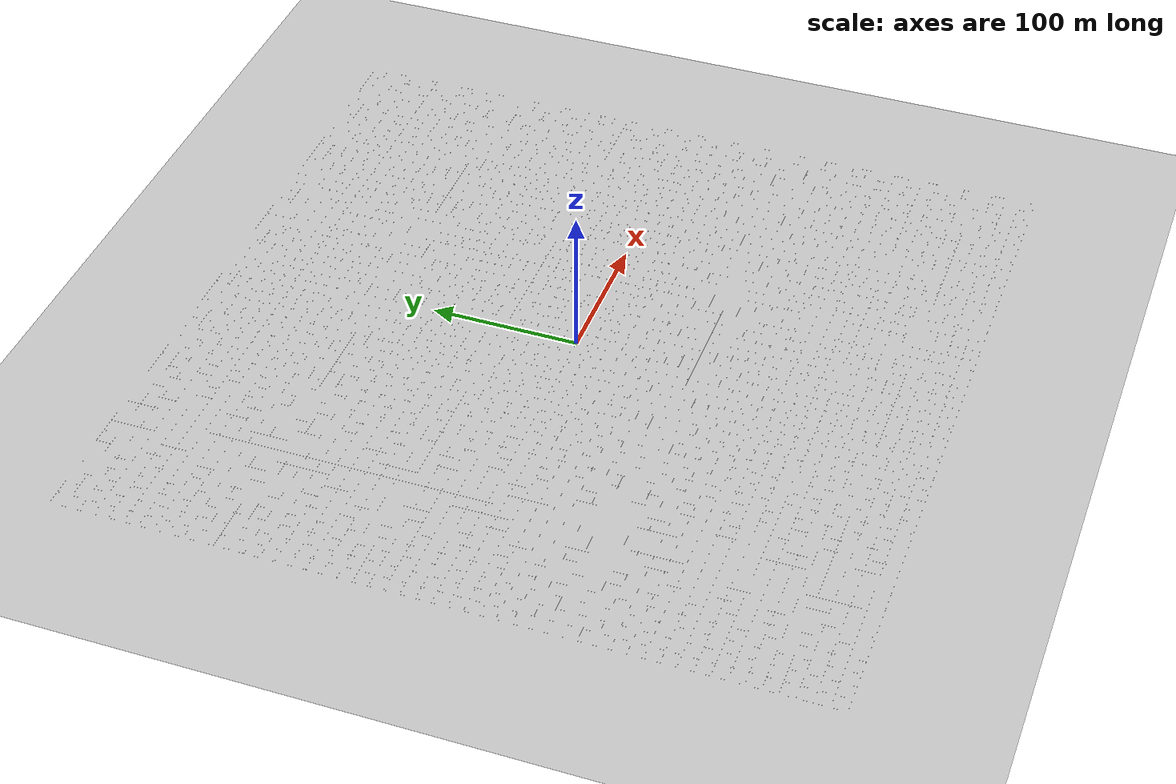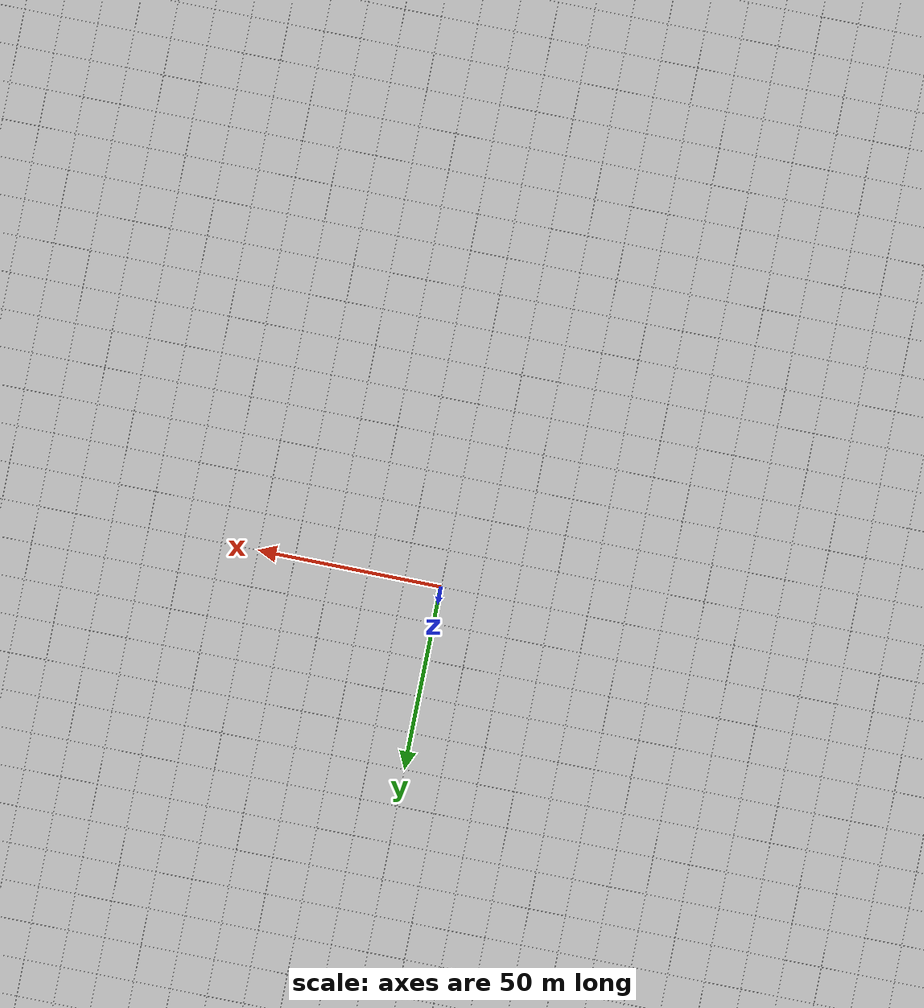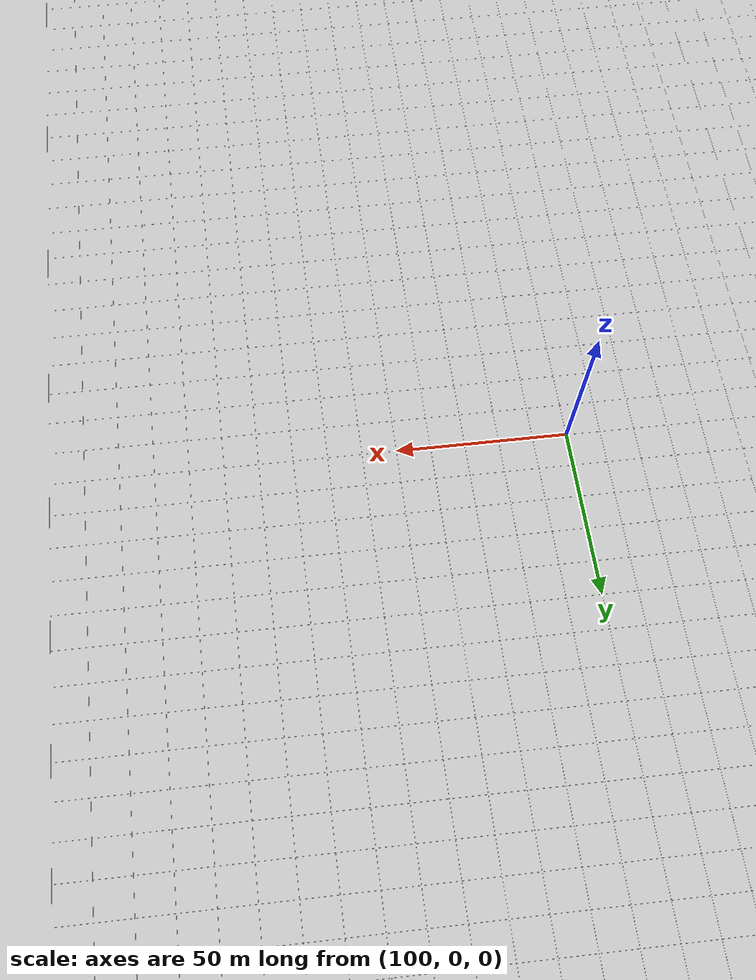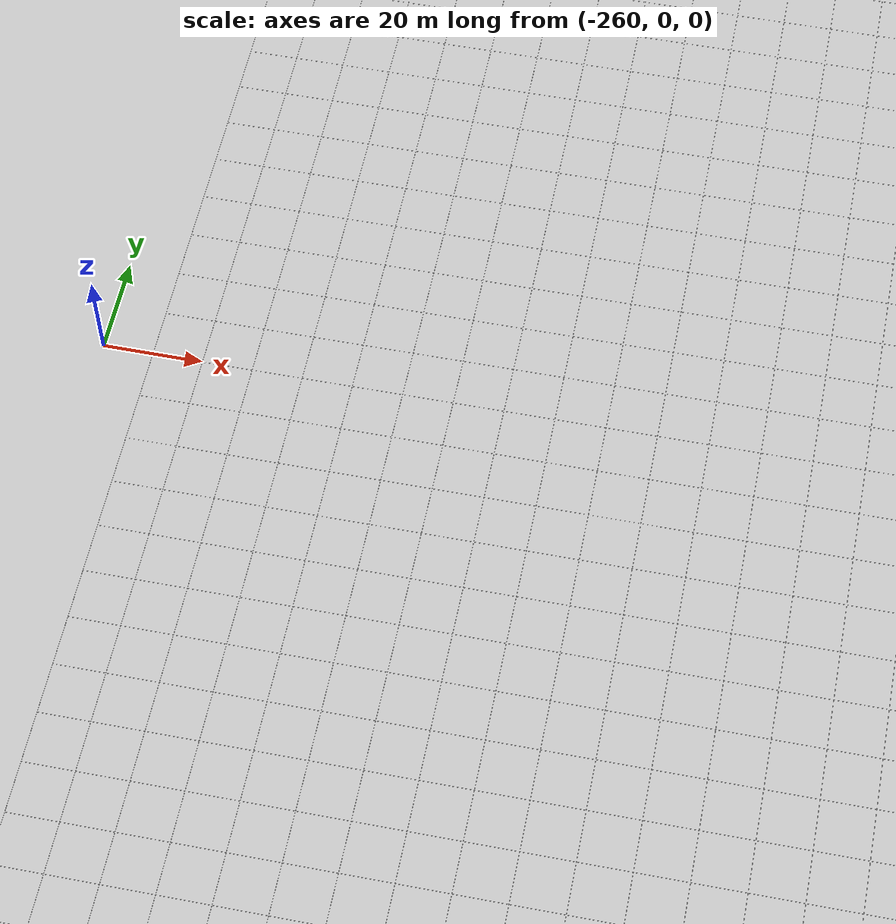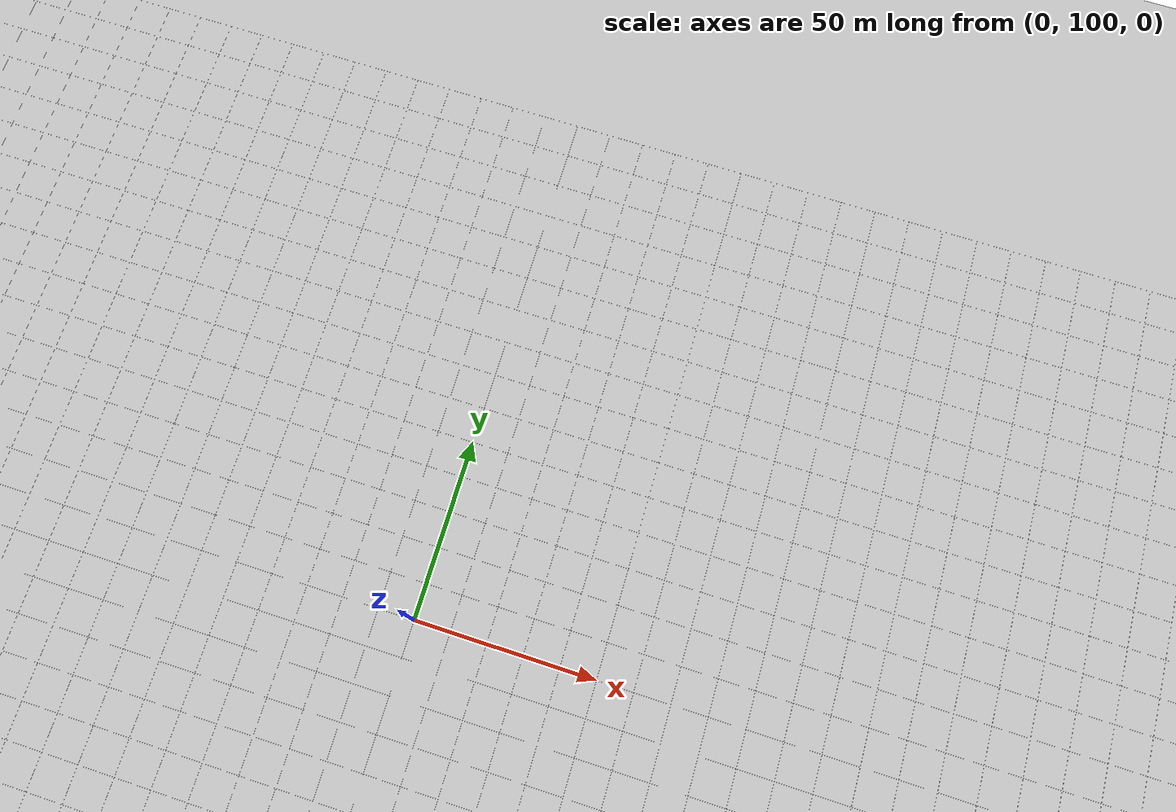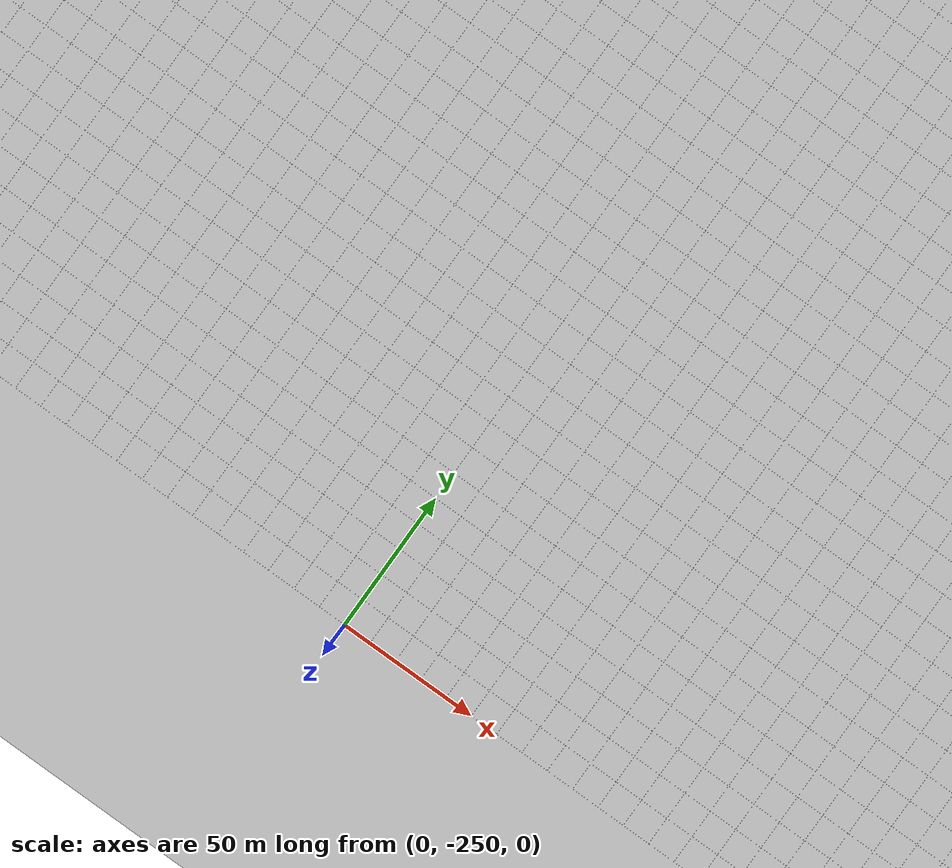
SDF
<sdf version="1.6">
 <world name="test_world_gen">
  <physics type="ode">
   <max_step_size>0.01</max_step_size>
   <real_time_factor>1.0</real_time_factor>
   <real_time_update_rate>100</real_time_update_rate>
  </physics>
  <include><uri>model://sun</uri></include>
  <include><uri>model://ground_plane</uri></include>
  <model name="reference_grid">
   <static>1</static>
   <link name="link">
    <visual name="line_x_0">
     <pose>0 -250.0 0.01 0 0 0</pose>
     <geometry><box><size>500.0 0.05 0.001</size></box></geometry>
     <material><script><name>Gazebo/Grey</name></script></material>
    </visual>
    <visual name="line_y_0">
     <pose>-250.0 0 0.01 0 0 1.5708</pose>
     <geometry><box><size>500.0 0.05 0.001</size></box></geometry>
     <material><script><name>Gazebo/Grey</name></script></material>
    </visual>
    <visual name="line_x_1">
     <pose>0 -240.0 0.01 0 0 0</pose>
     <geometry><box><size>500.0 0.05 0.001</size></box></geometry>
     <material><script><name>Gazebo/Grey</name></script></material>
    </visual>
    <visual name="line_y_1">
     <pose>-240.0 0 0.01 0 0 1.5708</pose>
     <geometry><box><size>500.0 0.05 0.001</size></box></geometry>
     <material><script><name>Gazebo/Grey</name></script></material>
    </visual>
    <visual name="line_x_2">
     <pose>0 -230.0 0.01 0 0 0</pose>
     <geometry><box><size>500.0 0.05 0.001</size></box></geometry>
     <material><script><name>Gazebo/Grey</name></script></material>
    </visual>
    <visual name="line_y_2">
     <pose>-230.0 0 0.01 0 0 1.5708</pose>
     <geometry><box><size>500.0 0.05 0.001</size></box></geometry>
     <material><script><name>Gazebo/Grey</name></script></material>
    </visual>
    <visual name="line_x_3">
     <pose>0 -220.0 0.01 0 0 0</pose>
     <geometry><box><size>500.0 0.05 0.001</size></box></geometry>
     <material><script><name>Gazebo/Grey</name></script></material>
    </visual>
    <visual name="line_y_3">
     <pose>-220.0 0 0.01 0 0 1.5708</pose>
     <geometry><box><size>500.0 0.05 0.001</size></box></geometry>
     <material><script><name>Gazebo/Grey</name></script></material>
    </visual>
    <visual name="line_x_4">
     <pose>0 -210.0 0.01 0 0 0</pose>
     <geometry><box><size>500.0 0.05 0.001</size></box></geometry>
     <material><script><name>Gazebo/Grey</name></script></material>
    </visual>
    <visual name="line_y_4">
     <pose>-210.0 0 0.01 0 0 1.5708</pose>
     <geometry><box><size>500.0 0.05 0.001</size></box></geometry>
     <material><script><name>Gazebo/Grey</name></script></material>
    </visual>
    <visual name="line_x_5">
     <pose>0 -200.0 0.01 0 0 0</pose>
     <geometry><box><size>500.0 0.05 0.001</size></box></geometry>
     <material><script><name>Gazebo/Grey</name></script></material>
    </visual>
    <visual name="line_y_5">
     <pose>-200.0 0 0.01 0 0 1.5708</pose>
     <geometry><box><size>500.0 0.05 0.001</size></box></geometry>
     <material><script><name>Gazebo/Grey</name></script></material>
    </visual>
    <visual name="line_x_6">
     <pose>0 -190.0 0.01 0 0 0</pose>
     <geometry><box><size>500.0 0.05 0.001</size></box></geometry>
     <material><script><name>Gazebo/Grey</name></script></material>
    </visual>
    <visual name="line_y_6">
     <pose>-190.0 0 0.01 0 0 1.5708</pose>
     <geometry><box><size>500.0 0.05 0.001</size></box></geometry>
     <material><script><name>Gazebo/Grey</name></script></material>
    </visual>
    <visual name="line_x_7">
     <pose>0 -180.0 0.01 0 0 0</pose>
     <geometry><box><size>500.0 0.05 0.001</size></box></geometry>
     <material><script><name>Gazebo/Grey</name></script></material>
    </visual>
    <visual name="line_y_7">
     <pose>-180.0 0 0.01 0 0 1.5708</pose>
     <geometry><box><size>500.0 0.05 0.001</size></box></geometry>
     <material><script><name>Gazebo/Grey</name></script></material>
    </visual>
    <visual name="line_x_8">
     <pose>0 -170.0 0.01 0 0 0</pose>
     <geometry><box><size>500.0 0.05 0.001</size></box></geometry>
     <material><script><name>Gazebo/Grey</name></script></material>
    </visual>
    <visual name="line_y_8">
     <pose>-170.0 0 0.01 0 0 1.5708</pose>
     <geometry><box><size>500.0 0.05 0.001</size></box></geometry>
     <material><script><name>Gazebo/Grey</name></script></material>
    </visual>
    <visual name="line_x_9">
     <pose>0 -160.0 0.01 0 0 0</pose>
     <geometry><box><size>500.0 0.05 0.001</size></box></geometry>
     <material><script><name>Gazebo/Grey</name></script></material>
    </visual>
    <visual name="line_y_9">
     <pose>-160.0 0 0.01 0 0 1.5708</pose>
     <geometry><box><size>500.0 0.05 0.001</size></box></geometry>
     <material><script><name>Gazebo/Grey</name></script></material>
    </visual>
    <visual name="line_x_10">
     <pose>0 -150.0 0.01 0 0 0</pose>
     <geometry><box><size>500.0 0.05 0.001</size></box></geometry>
     <material><script><name>Gazebo/Grey</name></script></material>
    </visual>
    <visual name="line_y_10">
     <pose>-150.0 0 0.01 0 0 1.5708</pose>
     <geometry><box><size>500.0 0.05 0.001</size></box></geometry>
     <material><script><name>Gazebo/Grey</name></script></material>
    </visual>
    <visual name="line_x_11">
     <pose>0 -140.0 0.01 0 0 0</pose>
     <geometry><box><size>500.0 0.05 0.001</size></box></geometry>
     <material><script><name>Gazebo/Grey</name></script></material>
    </visual>
    <visual name="line_y_11">
     <pose>-140.0 0 0.01 0 0 1.5708</pose>
     <geometry><box><size>500.0 0.05 0.001</size></box></geometry>
     <material><script><name>Gazebo/Grey</name></script></material>
    </visual>
    <visual name="line_x_12">
     <pose>0 -130.0 0.01 0 0 0</pose>
     <geometry><box><size>500.0 0.05 0.001</size></box></geometry>
     <material><script><name>Gazebo/Grey</name></script></material>
    </visual>
    <visual name="line_y_12">
     <pose>-130.0 0 0.01 0 0 1.5708</pose>
     <geometry><box><size>500.0 0.05 0.001</size></box></geometry>
     <material><script><name>Gazebo/Grey</name></script></material>
    </visual>
    <visual name="line_x_13">
     <pose>0 -120.0 0.01 0 0 0</pose>
     <geometry><box><size>500.0 0.05 0.001</size></box></geometry>
     <material><script><name>Gazebo/Grey</name></script></material>
    </visual>
    <visual name="line_y_13">
     <pose>-120.0 0 0.01 0 0 1.5708</pose>
     <geometry><box><size>500.0 0.05 0.001</size></box></geometry>
     <material><script><name>Gazebo/Grey</name></script></material>
    </visual>
    <visual name="line_x_14">
     <pose>0 -110.0 0.01 0 0 0</pose>
     <geometry><box><size>500.0 0.05 0.001</size></box></geometry>
     <material><script><name>Gazebo/Grey</name></script></material>
    </visual>
    <visual name="line_y_14">
     <pose>-110.0 0 0.01 0 0 1.5708</pose>
     <geometry><box><size>500.0 0.05 0.001</size></box></geometry>
     <material><script><name>Gazebo/Grey</name></script></material>
    </visual>
    <visual name="line_x_15">
     <pose>0 -100.0 0.01 0 0 0</pose>
     <geometry><box><size>500.0 0.05 0.001</size></box></geometry>
     <material><script><name>Gazebo/Grey</name></script></material>
    </visual>
    <visual name="line_y_15">
     <pose>-100.0 0 0.01 0 0 1.5708</pose>
     <geometry><box><size>500.0 0.05 0.001</size></box></geometry>
     <material><script><name>Gazebo/Grey</name></script></material>
    </visual>
    <visual name="line_x_16">
     <pose>0 -90.0 0.01 0 0 0</pose>
     <geometry><box><size>500.0 0.05 0.001</size></box></geometry>
     <material><script><name>Gazebo/Grey</name></script></material>
    </visual>
    <visual name="line_y_16">
     <pose>-90.0 0 0.01 0 0 1.5708</pose>
     <geometry><box><size>500.0 0.05 0.001</size></box></geometry>
     <material><script><name>Gazebo/Grey</name></script></material>
    </visual>
    <visual name="line_x_17">
     <pose>0 -80.0 0.01 0 0 0</pose>
     <geometry><box><size>500.0 0.05 0.001</size></box></geometry>
     <material><script><name>Gazebo/Grey</name></script></material>
    </visual>
    <visual name="line_y_17">
     <pose>-80.0 0 0.01 0 0 1.5708</pose>
     <geometry><box><size>500.0 0.05 0.001</size></box></geometry>
     <material><script><name>Gazebo/Grey</name></script></material>
    </visual>
    <visual name="line_x_18">
     <pose>0 -70.0 0.01 0 0 0</pose>
     <geometry><box><size>500.0 0.05 0.001</size></box></geometry>
     <material><script><name>Gazebo/Grey</name></script></material>
    </visual>
    <visual name="line_y_18">
     <pose>-70.0 0 0.01 0 0 1.5708</pose>
     <geometry><box><size>500.0 0.05 0.001</size></box></geometry>
     <material><script><name>Gazebo/Grey</name></script></material>
    </visual>
    <visual name="line_x_19">
     <pose>0 -60.0 0.01 0 0 0</pose>
     <geometry><box><size>500.0 0.05 0.001</size></box></geometry>
     <material><script><name>Gazebo/Grey</name></script></material>
    </visual>
    <visual name="line_y_19">
     <pose>-60.0 0 0.01 0 0 1.5708</pose>
     <geometry><box><size>500.0 0.05 0.001</size></box></geometry>
     <material><script><name>Gazebo/Grey</name></script></material>
    </visual>
    <visual name="line_x_20">
     <pose>0 -50.0 0.01 0 0 0</pose>
     <geometry><box><size>500.0 0.05 0.001</size></box></geometry>
     <material><script><name>Gazebo/Grey</name></script></material>
    </visual>
    <visual name="line_y_20">
     <pose>-50.0 0 0.01 0 0 1.5708</pose>
     <geometry><box><size>500.0 0.05 0.001</size></box></geometry>
     <material><script><name>Gazebo/Grey</name></script></material>
    </visual>
    <visual name="line_x_21">
     <pose>0 -40.0 0.01 0 0 0</pose>
     <geometry><box><size>500.0 0.05 0.001</size></box></geometry>
     <material><script><name>Gazebo/Grey</name></script></material>
    </visual>
    <visual name="line_y_21">
     <pose>-40.0 0 0.01 0 0 1.5708</pose>
     <geometry><box><size>500.0 0.05 0.001</size></box></geometry>
     <material><script><name>Gazebo/Grey</name></script></material>
    </visual>
    <visual name="line_x_22">
     <pose>0 -30.0 0.01 0 0 0</pose>
     <geometry><box><size>500.0 0.05 0.001</size></box></geometry>
     <material><script><name>Gazebo/Grey</name></script></material>
    </visual>
    <visual name="line_y_22">
     <pose>-30.0 0 0.01 0 0 1.5708</pose>
     <geometry><box><size>500.0 0.05 0.001</size></box></geometry>
     <material><script><name>Gazebo/Grey</name></script></material>
    </visual>
    <visual name="line_x_23">
     <pose>0 -20.0 0.01 0 0 0</pose>
     <geometry><box><size>500.0 0.05 0.001</size></box></geometry>
     <material><script><name>Gazebo/Grey</name></script></material>
    </visual>
    <visual name="line_y_23">
     <pose>-20.0 0 0.01 0 0 1.5708</pose>
     <geometry><box><size>500.0 0.05 0.001</size></box></geometry>
     <material><script><name>Gazebo/Grey</name></script></material>
    </visual>
    <visual name="line_x_24">
     <pose>0 -10.0 0.01 0 0 0</pose>
     <geometry><box><size>500.0 0.05 0.001</size></box></geometry>
     <material><script><name>Gazebo/Grey</name></script></material>
    </visual>
    <visual name="line_y_24">
     <pose>-10.0 0 0.01 0 0 1.5708</pose>
     <geometry><box><size>500.0 0.05 0.001</size></box></geometry>
     <material><script><name>Gazebo/Grey</name></script></material>
    </visual>
    <visual name="line_x_25">
     <pose>0 0.0 0.01 0 0 0</pose>
     <geometry><box><size>500.0 0.05 0.001</size></box></geometry>
     <material><script><name>Gazebo/Grey</name></script></material>
    </visual>
    <visual name="line_y_25">
     <pose>0.0 0 0.01 0 0 1.5708</pose>
     <geometry><box><size>500.0 0.05 0.001</size></box></geometry>
     <material><script><name>Gazebo/Grey</name></script></material>
    </visual>
    <visual name="line_x_26">
     <pose>0 10.0 0.01 0 0 0</pose>
     <geometry><box><size>500.0 0.05 0.001</size></box></geometry>
     <material><script><name>Gazebo/Grey</name></script></material>
    </visual>
    <visual name="line_y_26">
     <pose>10.0 0 0.01 0 0 1.5708</pose>
     <geometry><box><size>500.0 0.05 0.001</size></box></geometry>
     <material><script><name>Gazebo/Grey</name></script></material>
    </visual>
    <visual name="line_x_27">
     <pose>0 20.0 0.01 0 0 0</pose>
     <geometry><box><size>500.0 0.05 0.001</size></box></geometry>
     <material><script><name>Gazebo/Grey</name></script></material>
    </visual>
    <visual name="line_y_27">
     <pose>20.0 0 0.01 0 0 1.5708</pose>
     <geometry><box><size>500.0 0.05 0.001</size></box></geometry>
     <material><script><name>Gazebo/Grey</name></script></material>
    </visual>
    <visual name="line_x_28">
     <pose>0 30.0 0.01 0 0 0</pose>
     <geometry><box><size>500.0 0.05 0.001</size></box></geometry>
     <material><script><name>Gazebo/Grey</name></script></material>
    </visual>
    <visual name="line_y_28">
     <pose>30.0 0 0.01 0 0 1.5708</pose>
     <geometry><box><size>500.0 0.05 0.001</size></box></geometry>
     <material><script><name>Gazebo/Grey</name></script></material>
    </visual>
    <visual name="line_x_29">
     <pose>0 40.0 0.01 0 0 0</pose>
     <geometry><box><size>500.0 0.05 0.001</size></box></geometry>
     <material><script><name>Gazebo/Grey</name></script></material>
    </visual>
    <visual name="line_y_29">
     <pose>40.0 0 0.01 0 0 1.5708</pose>
     <geometry><box><size>500.0 0.05 0.001</size></box></geometry>
     <material><script><name>Gazebo/Grey</name></script></material>
    </visual>
    <visual name="line_x_30">
     <pose>0 50.0 0.01 0 0 0</pose>
     <geometry><box><size>500.0 0.05 0.001</size></box></geometry>
     <material><script><name>Gazebo/Grey</name></script></material>
    </visual>
    <visual name="line_y_30">
     <pose>50.0 0 0.01 0 0 1.5708</pose>
     <geometry><box><size>500.0 0.05 0.001</size></box></geometry>
     <material><script><name>Gazebo/Grey</name></script></material>
    </visual>
    <visual name="line_x_31">
     <pose>0 60.0 0.01 0 0 0</pose>
     <geometry><box><size>500.0 0.05 0.001</size></box></geometry>
     <material><script><name>Gazebo/Grey</name></script></material>
    </visual>
    <visual name="line_y_31">
     <pose>60.0 0 0.01 0 0 1.5708</pose>
     <geometry><box><size>500.0 0.05 0.001</size></box></geometry>
     <material><script><name>Gazebo/Grey</name></script></material>
    </visual>
    <visual name="line_x_32">
     <pose>0 70.0 0.01 0 0 0</pose>
     <geometry><box><size>500.0 0.05 0.001</size></box></geometry>
     <material><script><name>Gazebo/Grey</name></script></material>
    </visual>
    <visual name="line_y_32">
     <pose>70.0 0 0.01 0 0 1.5708</pose>
     <geometry><box><size>500.0 0.05 0.001</size></box></geometry>
     <material><script><name>Gazebo/Grey</name></script></material>
    </visual>
    <visual name="line_x_33">
     <pose>0 80.0 0.01 0 0 0</pose>
     <geometry><box><size>500.0 0.05 0.001</size></box></geometry>
     <material><script><name>Gazebo/Grey</name></script></material>
    </visual>
    <visual name="line_y_33">
     <pose>80.0 0 0.01 0 0 1.5708</pose>
     <geometry><box><size>500.0 0.05 0.001</size></box></geometry>
     <material><script><name>Gazebo/Grey</name></script></material>
    </visual>
    <visual name="line_x_34">
     <pose>0 90.0 0.01 0 0 0</pose>
     <geometry><box><size>500.0 0.05 0.001</size></box></geometry>
     <material><script><name>Gazebo/Grey</name></script></material>
    </visual>
    <visual name="line_y_34">
     <pose>90.0 0 0.01 0 0 1.5708</pose>
     <geometry><box><size>500.0 0.05 0.001</size></box></geometry>
     <material><script><name>Gazebo/Grey</name></script></material>
    </visual>
    <visual name="line_x_35">
     <pose>0 100.0 0.01 0 0 0</pose>
     <geometry><box><size>500.0 0.05 0.001</size></box></geometry>
     <material><script><name>Gazebo/Grey</name></script></material>
    </visual>
    <visual name="line_y_35">
     <pose>100.0 0 0.01 0 0 1.5708</pose>
     <geometry><box><size>500.0 0.05 0.001</size></box></geometry>
     <material><script><name>Gazebo/Grey</name></script></material>
    </visual>
    <visual name="line_x_36">
     <pose>0 110.0 0.01 0 0 0</pose>
     <geometry><box><size>500.0 0.05 0.001</size></box></geometry>
     <material><script><name>Gazebo/Grey</name></script></material>
    </visual>
    <visual name="line_y_36">
     <pose>110.0 0 0.01 0 0 1.5708</pose>
     <geometry><box><size>500.0 0.05 0.001</size></box></geometry>
     <material><script><name>Gazebo/Grey</name></script></material>
    </visual>
    <visual name="line_x_37">
     <pose>0 120.0 0.01 0 0 0</pose>
     <geometry><box><size>500.0 0.05 0.001</size></box></geometry>
     <material><script><name>Gazebo/Grey</name></script></material>
    </visual>
    <visual name="line_y_37">
     <pose>120.0 0 0.01 0 0 1.5708</pose>
     <geometry><box><size>500.0 0.05 0.001</size></box></geometry>
     <material><script><name>Gazebo/Grey</name></script></material>
    </visual>
    <visual name="line_x_38">
     <pose>0 130.0 0.01 0 0 0</pose>
     <geometry><box><size>500.0 0.05 0.001</size></box></geometry>
     <material><script><name>Gazebo/Grey</name></script></material>
    </visual>
    <visual name="line_y_38">
     <pose>130.0 0 0.01 0 0 1.5708</pose>
     <geometry><box><size>500.0 0.05 0.001</size></box></geometry>
     <material><script><name>Gazebo/Grey</name></script></material>
    </visual>
    <visual name="line_x_39">
     <pose>0 140.0 0.01 0 0 0</pose>
     <geometry><box><size>500.0 0.05 0.001</size></box></geometry>
     <material><script><name>Gazebo/Grey</name></script></material>
    </visual>
    <visual name="line_y_39">
     <pose>140.0 0 0.01 0 0 1.5708</pose>
     <geometry><box><size>500.0 0.05 0.001</size></box></geometry>
     <material><script><name>Gazebo/Grey</name></script></material>
    </visual>
    <visual name="line_x_40">
     <pose>0 150.0 0.01 0 0 0</pose>
     <geometry><box><size>500.0 0.05 0.001</size></box></geometry>
     <material><script><name>Gazebo/Grey</name></script></material>
    </visual>
    <visual name="line_y_40">
     <pose>150.0 0 0.01 0 0 1.5708</pose>
     <geometry><box><size>500.0 0.05 0.001</size></box></geometry>
     <material><script><name>Gazebo/Grey</name></script></material>
    </visual>
    <visual name="line_x_41">
     <pose>0 160.0 0.01 0 0 0</pose>
     <geometry><box><size>500.0 0.05 0.001</size></box></geometry>
     <material><script><name>Gazebo/Grey</name></script></material>
    </visual>
    <visual name="line_y_41">
     <pose>160.0 0 0.01 0 0 1.5708</pose>
     <geometry><box><size>500.0 0.05 0.001</size></box></geometry>
     <material><script><name>Gazebo/Grey</name></script></material>
    </visual>
    <visual name="line_x_42">
     <pose>0 170.0 0.01 0 0 0</pose>
     <geometry><box><size>500.0 0.05 0.001</size></box></geometry>
     <material><script><name>Gazebo/Grey</name></script></material>
    </visual>
    <visual name="line_y_42">
     <pose>170.0 0 0.01 0 0 1.5708</pose>
     <geometry><box><size>500.0 0.05 0.001</size></box></geometry>
     <material><script><name>Gazebo/Grey</name></script></material>
    </visual>
    <visual name="line_x_43">
     <pose>0 180.0 0.01 0 0 0</pose>
     <geometry><box><size>500.0 0.05 0.001</size></box></geometry>
     <material><script><name>Gazebo/Grey</name></script></material>
    </visual>
    <visual name="line_y_43">
     <pose>180.0 0 0.01 0 0 1.5708</pose>
     <geometry><box><size>500.0 0.05 0.001</size></box></geometry>
     <material><script><name>Gazebo/Grey</name></script></material>
    </visual>
    <visual name="line_x_44">
     <pose>0 190.0 0.01 0 0 0</pose>
     <geometry><box><size>500.0 0.05 0.001</size></box></geometry>
     <material><script><name>Gazebo/Grey</name></script></material>
    </visual>
    <visual name="line_y_44">
     <pose>190.0 0 0.01 0 0 1.5708</pose>
     <geometry><box><size>500.0 0.05 0.001</size></box></geometry>
     <material><script><name>Gazebo/Grey</name></script></material>
    </visual>
    <visual name="line_x_45">
     <pose>0 200.0 0.01 0 0 0</pose>
     <geometry><box><size>500.0 0.05 0.001</size></box></geometry>
     <material><script><name>Gazebo/Grey</name></script></material>
    </visual>
    <visual name="line_y_45">
     <pose>200.0 0 0.01 0 0 1.5708</pose>
     <geometry><box><size>500.0 0.05 0.001</size></box></geometry>
     <material><script><name>Gazebo/Grey</name></script></material>
    </visual>
    <visual name="line_x_46">
     <pose>0 210.0 0.01 0 0 0</pose>
     <geometry><box><size>500.0 0.05 0.001</size></box></geometry>
     <material><script><name>Gazebo/Grey</name></script></material>
    </visual>
    <visual name="line_y_46">
     <pose>210.0 0 0.01 0 0 1.5708</pose>
     <geometry><box><size>500.0 0.05 0.001</size></box></geometry>
     <material><script><name>Gazebo/Grey</name></script></material>
    </visual>
    <visual name="line_x_47">
     <pose>0 220.0 0.01 0 0 0</pose>
     <geometry><box><size>500.0 0.05 0.001</size></box></geometry>
     <material><script><name>Gazebo/Grey</name></script></material>
    </visual>
    <visual name="line_y_47">
     <pose>220.0 0 0.01 0 0 1.5708</pose>
     <geometry><box><size>500.0 0.05 0.001</size></box></geometry>
     <material><script><name>Gazebo/Grey</name></script></material>
    </visual>
    <visual name="line_x_48">
     <pose>0 230.0 0.01 0 0 0</pose>
     <geometry><box><size>500.0 0.05 0.001</size></box></geometry>
     <material><script><name>Gazebo/Grey</name></script></material>
    </visual>
    <visual name="line_y_48">
     <pose>230.0 0 0.01 0 0 1.5708</pose>
     <geometry><box><size>500.0 0.05 0.001</size></box></geometry>
     <material><script><name>Gazebo/Grey</name></script></material>
    </visual>
    <visual name="line_x_49">
     <pose>0 240.0 0.01 0 0 0</pose>
     <geometry><box><size>500.0 0.05 0.001</size></box></geometry>
     <material><script><name>Gazebo/Grey</name></script></material>
    </visual>
    <visual name="line_y_49">
     <pose>240.0 0 0.01 0 0 1.5708</pose>
     <geometry><box><size>500.0 0.05 0.001</size></box></geometry>
     <material><script><name>Gazebo/Grey</name></script></material>
    </visual>
    <visual name="line_x_50">
     <pose>0 250.0 0.01 0 0 0</pose>
     <geometry><box><size>500.0 0.05 0.001</size></box></geometry>
     <material><script><name>Gazebo/Grey</name></script></material>
    </visual>
    <visual name="line_y_50">
     <pose>250.0 0 0.01 0 0 1.5708</pose>
     <geometry><box><size>500.0 0.05 0.001</size></box></geometry>
     <material><script><name>Gazebo/Grey</name></script></material>
    </visual>
   </link>
  </model>
 </world>
</sdf>
